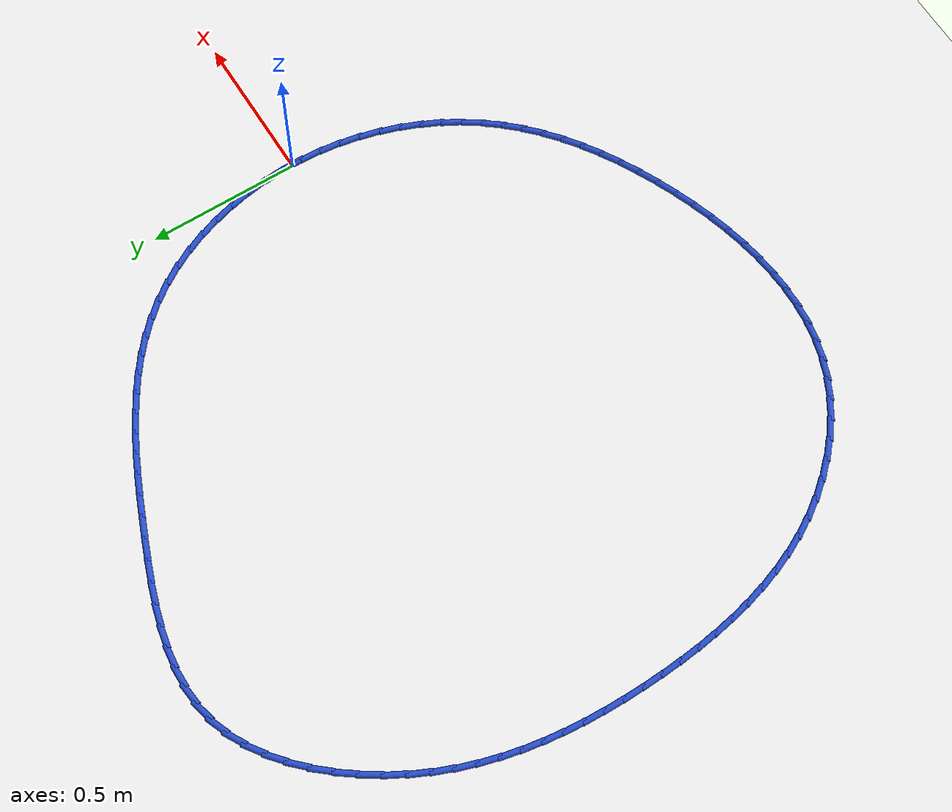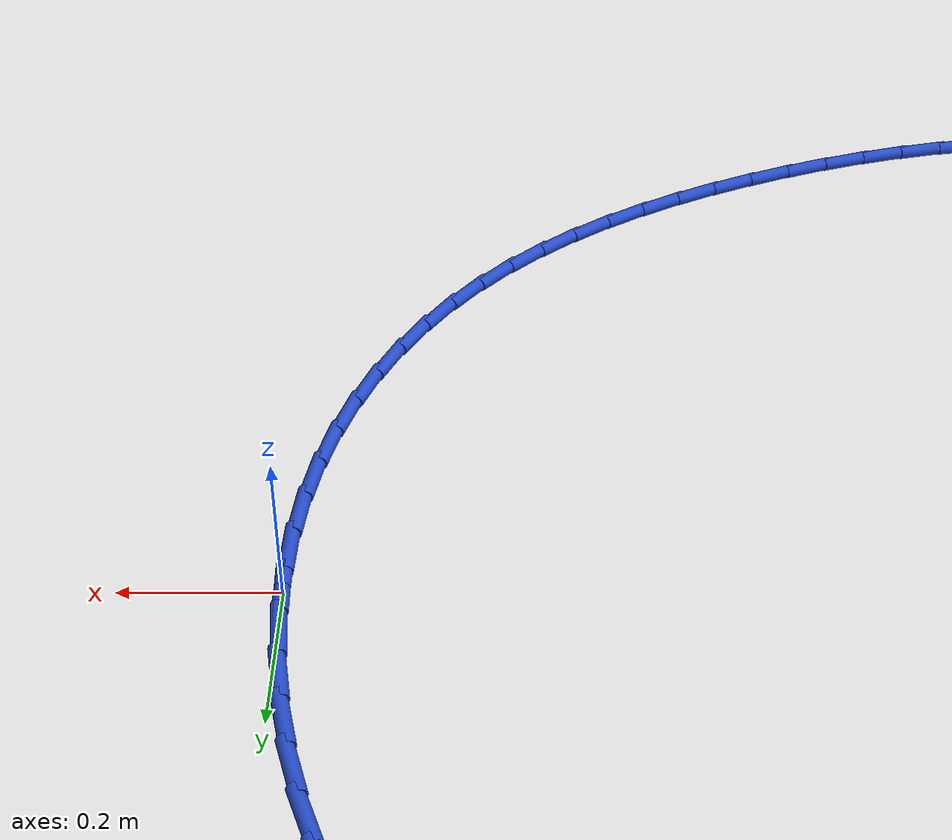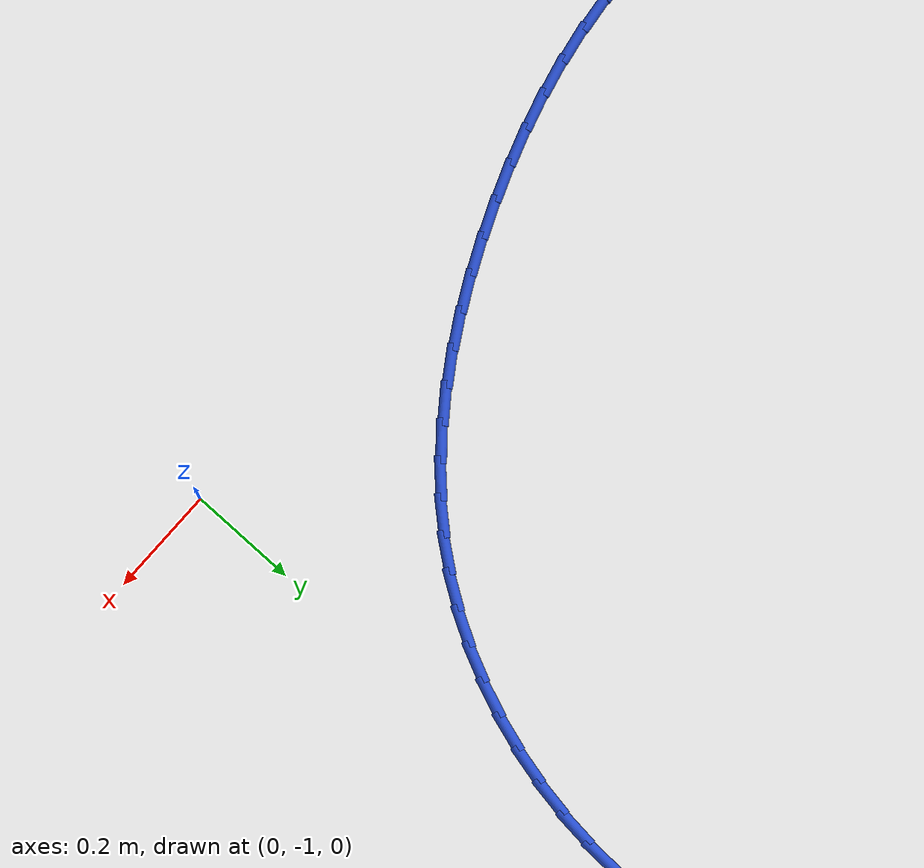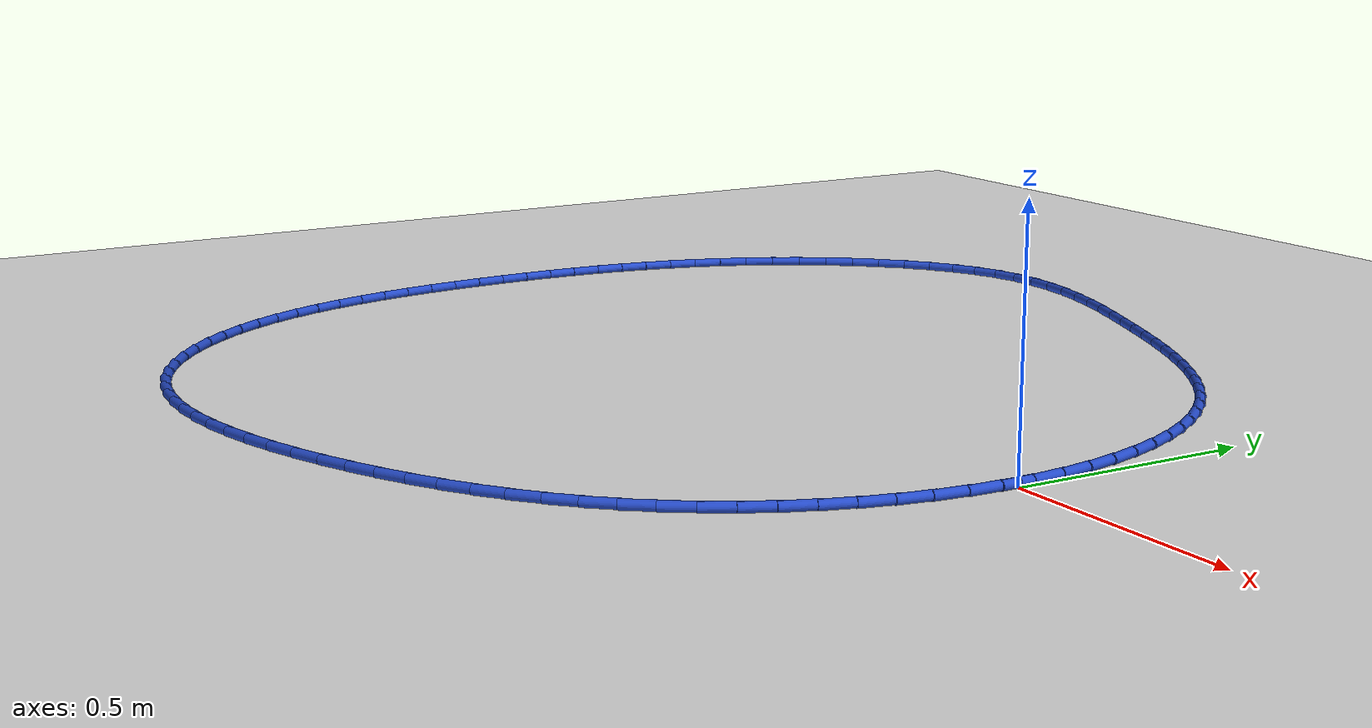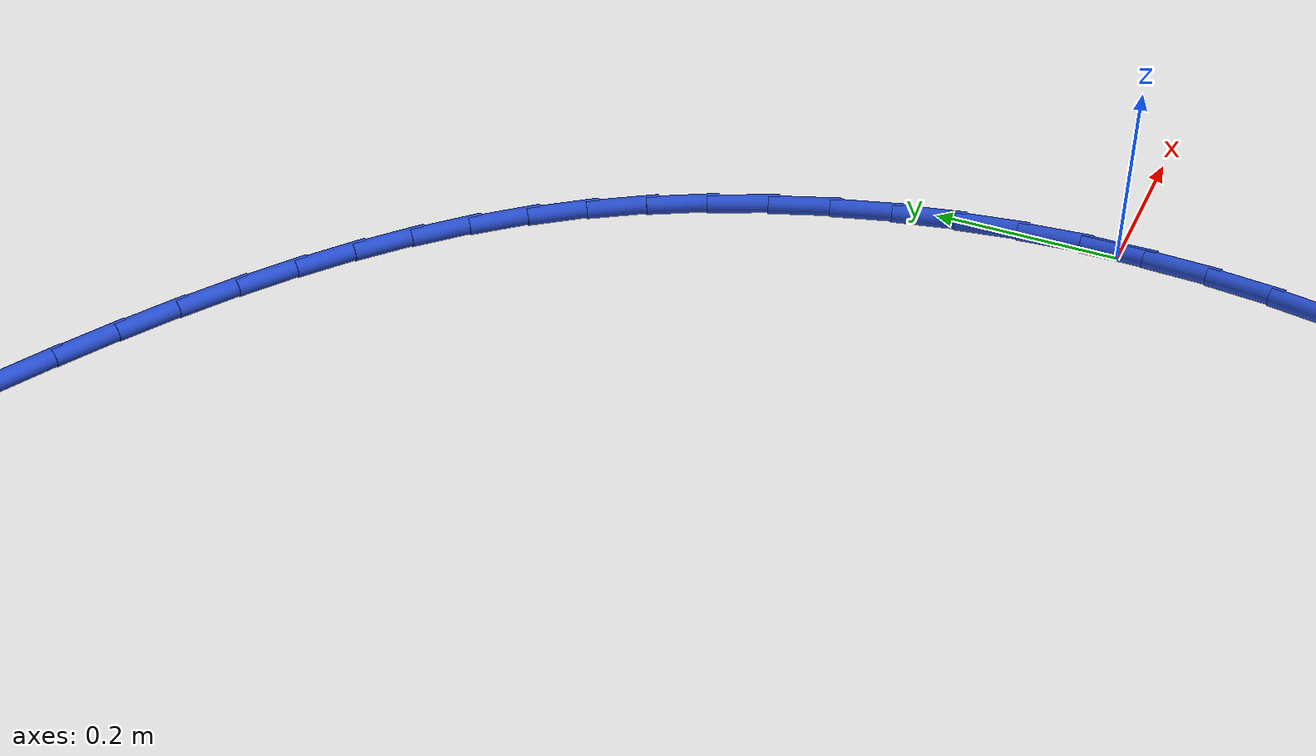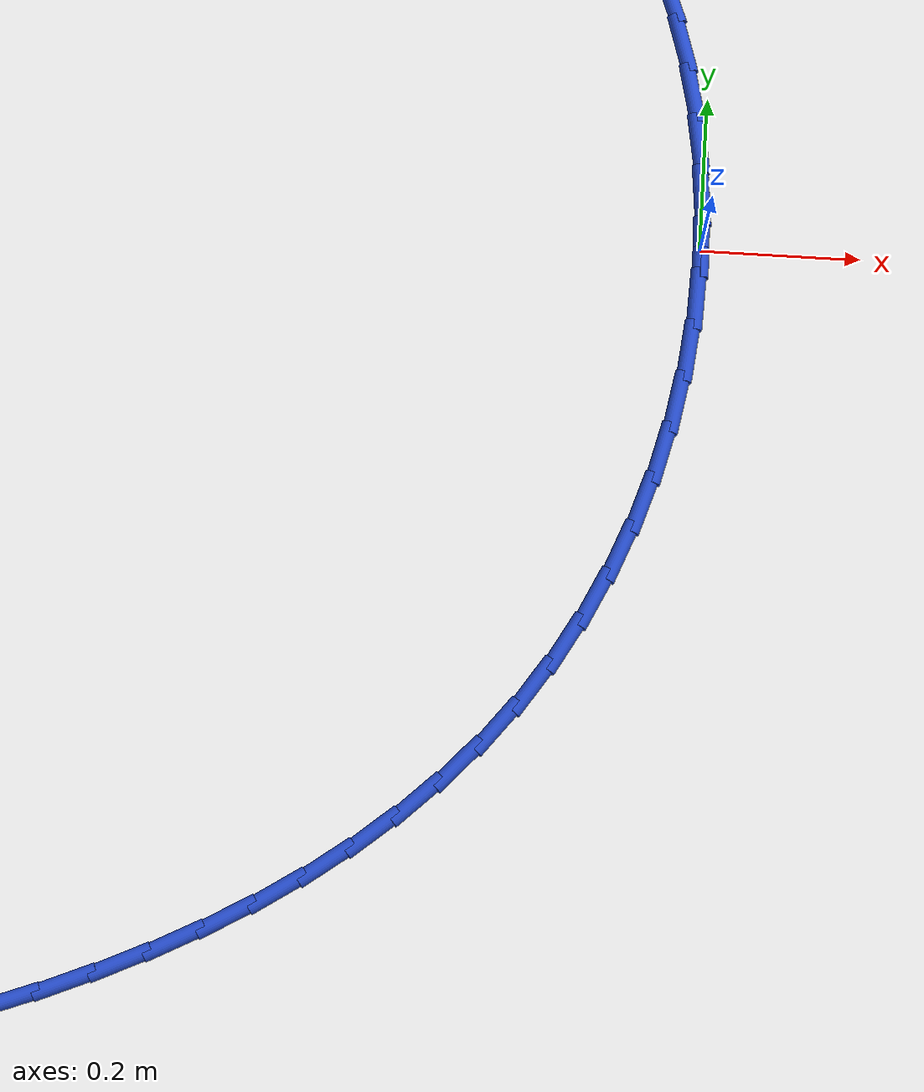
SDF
<sdf version="1.6">
 <world name="default">
  <light name="sun" type="directional">
   <pose>0 0 10 0 -0 0</pose>
   <diffuse>0.8 0.8 0.8 1</diffuse>
   <specular>0.2 0.2 0.2 1</specular>
   <attenuation>
    <range>1000</range>
    <constant>0.9</constant>
    <linear>0.01</linear>
    <quadratic>0.001</quadratic>
   </attenuation>
   <direction>-0.5 0.1 -0.9</direction>
  </light>
  <model name="ground_plane">
   <static>1</static>
   <link name="link">
    <collision name="collision">
     <geometry><plane><normal>0 0 1</normal><size>100 100</size></plane></geometry>
     <surface><friction><ode><mu>100</mu><mu2>50</mu2></ode></friction></surface>
    </collision>
    <visual name="visual">
     <cast_shadows>0</cast_shadows>
     <geometry><plane><normal>0 0 1</normal><size>100 100</size></plane></geometry>
     <material>
      <script><uri>file://media/materials/scripts/gazebo.material</uri><name>Gazebo/WhiteGlow</name></script>
     </material>
    </visual>
   </link>
  </model>
  <gravity>0 0 -9.8</gravity>
  <magnetic_field>6e-06 2.3e-05 -4.2e-05</magnetic_field>
  <atmosphere type="adiabatic"/>
  <physics name="default_physics" default="0" type="ode">
   <max_step_size>0.001</max_step_size>
   <real_time_factor>1</real_time_factor>
   <real_time_update_rate>1000</real_time_update_rate>
  </physics>
  <scene><ambient>0.4 0.4 0.4 1</ambient><background>0.7 0.7 0.7 1</background><shadows>1</shadows></scene>
  <spherical_coordinates>
   <surface_model>EARTH_WGS84</surface_model>
   <latitude_deg>0</latitude_deg>
   <longitude_deg>0</longitude_deg>
   <elevation>0</elevation>
   <heading_deg>0</heading_deg>
  </spherical_coordinates>
  <model name="line">
   <link name="link_0">
    <pose>4.5102810375396984e-17 -2.7755575615628914e-17 0.01 0 1.57 -1.5372121869875264</pose>
    <collision name="collision">
     <geometry><cylinder><radius>0.01</radius><length>0.08</length></cylinder></geometry>
    </collision>
    <visual name="visual">
     <material>
      <script><name>Gazebo/Blue</name><uri>file://media/materials/scripts/gazebo.material</uri></script>
     </material>
     <geometry><cylinder><radius>0.01</radius><length>0.08</length></cylinder></geometry>
    </visual>
   </link>
   <link name="link_1">
    <pose>-0.0022859759665158235 0.06804153592912765 0.01 0 1.57 -1.4706459351558636</pose>
    <collision name="collision">
     <geometry><cylinder><radius>0.01</radius><length>0.08</length></cylinder></geometry>
    </collision>
    <visual name="visual">
     <material>
      <script><name>Gazebo/Blue</name><uri>file://media/materials/scripts/gazebo.material</uri></script>
     </material>
     <geometry><cylinder><radius>0.01</radius><length>0.08</length></cylinder></geometry>
    </visual>
   </link>
   <link name="link_2">
    <pose>-0.00909491854480046 0.1358012564520265 0.01 0 1.57 -1.404736273116116</pose>
    <collision name="collision">
     <geometry><cylinder><radius>0.01</radius><length>0.08</length></cylinder></geometry>
    </collision>
    <visual name="visual">
     <material>
      <script><name>Gazebo/Blue</name><uri>file://media/materials/scripts/gazebo.material</uri></script>
     </material>
     <geometry><cylinder><radius>0.01</radius><length>0.08</length></cylinder></geometry>
    </visual>
   </link>
   <link name="link_3">
    <pose>-0.02033465383260243 0.202862715116517 0.01 0 1.57 -1.3388226017046176</pose>
    <collision name="collision">
     <geometry><cylinder><radius>0.01</radius><length>0.08</length></cylinder></geometry>
    </collision>
    <visual name="visual">
     <material>
      <script><name>Gazebo/Blue</name><uri>file://media/materials/scripts/gazebo.material</uri></script>
     </material>
     <geometry><cylinder><radius>0.01</radius><length>0.08</length></cylinder></geometry>
    </visual>
   </link>
   <link name="link_4">
    <pose>-0.03591300792767031 0.26880946547041973 0.01 0 1.57 -1.2722319381240197</pose>
    <collision name="collision">
     <geometry><cylinder><radius>0.01</radius><length>0.08</length></cylinder></geometry>
    </collision>
    <visual name="visual">
     <material>
      <script><name>Gazebo/Blue</name><uri>file://media/materials/scripts/gazebo.material</uri></script>
     </material>
     <geometry><cylinder><radius>0.01</radius><length>0.08</length></cylinder></geometry>
    </visual>
   </link>
   <link name="link_5">
    <pose>-0.05573780692775265 0.33322506106155514 0.01 0 1.57 -1.204279226201468</pose>
    <collision name="collision">
     <geometry><cylinder><radius>0.01</radius><length>0.08</length></cylinder></geometry>
    </collision>
    <visual name="visual">
     <material>
      <script><name>Gazebo/Blue</name><uri>file://media/materials/scripts/gazebo.material</uri></script>
     </material>
     <geometry><cylinder><radius>0.01</radius><length>0.08</length></cylinder></geometry>
    </visual>
   </link>
   <link name="link_6">
    <pose>-0.07971687693059805 0.39569305543774386 0.01 0 1.57 -1.1342694727394105</pose>
    <collision name="collision">
     <geometry><cylinder><radius>0.01</radius><length>0.08</length></cylinder></geometry>
    </collision>
    <visual name="visual">
     <material>
      <script><name>Gazebo/Blue</name><uri>file://media/materials/scripts/gazebo.material</uri></script>
     </material>
     <geometry><cylinder><radius>0.01</radius><length>0.08</length></cylinder></geometry>
    </visual>
   </link>
   <link name="link_7">
    <pose>-0.10775804403395507 0.45579700214680635 0.01 0 1.57 -1.0615045963562957</pose>
    <collision name="collision">
     <geometry><cylinder><radius>0.01</radius><length>0.08</length></cylinder></geometry>
    </collision>
    <visual name="visual">
     <material>
      <script><name>Gazebo/Blue</name><uri>file://media/materials/scripts/gazebo.material</uri></script>
     </material>
     <geometry><cylinder><radius>0.01</radius><length>0.08</length></cylinder></geometry>
    </visual>
   </link>
   <link name="link_8">
    <pose>-0.1397691343355722 0.5131204547365632 0.01 0 1.57 -0.9852984678331838</pose>
    <collision name="collision">
     <geometry><cylinder><radius>0.01</radius><length>0.08</length></cylinder></geometry>
    </collision>
    <visual name="visual">
     <material>
      <script><name>Gazebo/Blue</name><uri>file://media/materials/scripts/gazebo.material</uri></script>
     </material>
     <geometry><cylinder><radius>0.01</radius><length>0.08</length></cylinder></geometry>
    </visual>
   </link>
   <link name="link_9">
    <pose>-0.17565797393319812 0.5672469667548347 0.01 0 1.57 -0.9053281492900213</pose>
    <collision name="collision">
     <geometry><cylinder><radius>0.01</radius><length>0.08</length></cylinder></geometry>
    </collision>
    <visual name="visual">
     <material>
      <script><name>Gazebo/Blue</name><uri>file://media/materials/scripts/gazebo.material</uri></script>
     </material>
     <geometry><cylinder><radius>0.01</radius><length>0.08</length></cylinder></geometry>
    </visual>
   </link>
   <link name="link_10">
    <pose>-0.21532622108897898 0.6177859322760211 0.01 0 1.57 -0.826237822256473</pose>
    <collision name="collision">
     <geometry><cylinder><radius>0.01</radius><length>0.08</length></cylinder></geometry>
    </collision>
    <visual name="visual">
     <material>
      <script><name>Gazebo/Blue</name><uri>file://media/materials/scripts/gazebo.material</uri></script>
     </material>
     <geometry><cylinder><radius>0.01</radius><length>0.08</length></cylinder></geometry>
    </visual>
   </link>
   <link name="link_11">
    <pose>-0.2585841285177646 0.6647296945363851 0.01 0 1.57 -0.7526672981691844</pose>
    <collision name="collision">
     <geometry><cylinder><radius>0.01</radius><length>0.08</length></cylinder></geometry>
    </collision>
    <visual name="visual">
     <material>
      <script><name>Gazebo/Blue</name><uri>file://media/materials/scripts/gazebo.material</uri></script>
     </material>
     <geometry><cylinder><radius>0.01</radius><length>0.08</length></cylinder></geometry>
    </visual>
   </link>
   <link name="link_12">
    <pose>-0.3051720339320167 0.7083635099744834 0.01 0 1.57 -0.6855911593926873</pose>
    <collision name="collision">
     <geometry><cylinder><radius>0.01</radius><length>0.08</length></cylinder></geometry>
    </collision>
    <visual name="visual">
     <material>
      <script><name>Gazebo/Blue</name><uri>file://media/materials/scripts/gazebo.material</uri></script>
     </material>
     <geometry><cylinder><radius>0.01</radius><length>0.08</length></cylinder></geometry>
    </visual>
   </link>
   <link name="link_13">
    <pose>-0.35482850234161867 0.7489800618753479 0.01 0 1.57 -0.6255050384825276</pose>
    <collision name="collision">
     <geometry><cylinder><radius>0.01</radius><length>0.08</length></cylinder></geometry>
    </collision>
    <visual name="visual">
     <material>
      <script><name>Gazebo/Blue</name><uri>file://media/materials/scripts/gazebo.material</uri></script>
     </material>
     <geometry><cylinder><radius>0.01</radius><length>0.08</length></cylinder></geometry>
    </visual>
   </link>
   <link name="link_14">
    <pose>-0.40729209875645367 0.7868720335240103 0.01 0 1.57 -0.5725836713804383</pose>
    <collision name="collision">
     <geometry><cylinder><radius>0.01</radius><length>0.08</length></cylinder></geometry>
    </collision>
    <visual name="visual">
     <material>
      <script><name>Gazebo/Blue</name><uri>file://media/materials/scripts/gazebo.material</uri></script>
     </material>
     <geometry><cylinder><radius>0.01</radius><length>0.08</length></cylinder></geometry>
    </visual>
   </link>
   <link name="link_15">
    <pose>-0.4623013881864049 0.8223321082055023 0.01 0 1.57 -0.5267663026989902</pose>
    <collision name="collision">
     <geometry><cylinder><radius>0.01</radius><length>0.08</length></cylinder></geometry>
    </collision>
    <visual name="visual">
     <material>
      <script><name>Gazebo/Blue</name><uri>file://media/materials/scripts/gazebo.material</uri></script>
     </material>
     <geometry><cylinder><radius>0.01</radius><length>0.08</length></cylinder></geometry>
    </visual>
   </link>
   <link name="link_16">
    <pose>-0.5195949356413557 0.8556529692048558 0.01 0 1.57 -0.48784088631316697</pose>
    <collision name="collision">
     <geometry><cylinder><radius>0.01</radius><length>0.08</length></cylinder></geometry>
    </collision>
    <visual name="visual">
     <material>
      <script><name>Gazebo/Blue</name><uri>file://media/materials/scripts/gazebo.material</uri></script>
     </material>
     <geometry><cylinder><radius>0.01</radius><length>0.08</length></cylinder></geometry>
    </visual>
   </link>
   <link name="link_17">
    <pose>-0.5789113061311894 0.8871272998071023 0.01 0 1.57 -0.45551506814498116</pose>
    <collision name="collision">
     <geometry><cylinder><radius>0.01</radius><length>0.08</length></cylinder></geometry>
    </collision>
    <visual name="visual">
     <material>
      <script><name>Gazebo/Blue</name><uri>file://media/materials/scripts/gazebo.material</uri></script>
     </material>
     <geometry><cylinder><radius>0.01</radius><length>0.08</length></cylinder></geometry>
    </visual>
   </link>
   <link name="link_18">
    <pose>-0.6399890646657889 0.9170477832972733 0.01 0 1.57 -0.42946997244952395</pose>
    <collision name="collision">
     <geometry><cylinder><radius>0.01</radius><length>0.08</length></cylinder></geometry>
    </collision>
    <visual name="visual">
     <material>
      <script><name>Gazebo/Blue</name><uri>file://media/materials/scripts/gazebo.material</uri></script>
     </material>
     <geometry><cylinder><radius>0.01</radius><length>0.08</length></cylinder></geometry>
    </visual>
   </link>
   <link name="link_19">
    <pose>-0.7025667762550375 0.9457071029604014 0.01 0 1.57 -0.4093976965349323</pose>
    <collision name="collision">
     <geometry><cylinder><radius>0.01</radius><length>0.08</length></cylinder></geometry>
    </collision>
    <visual name="visual">
     <material>
      <script><name>Gazebo/Blue</name><uri>file://media/materials/scripts/gazebo.material</uri></script>
     </material>
     <geometry><cylinder><radius>0.01</radius><length>0.08</length></cylinder></geometry>
    </visual>
   </link>
   <link name="link_20">
    <pose>-0.7663830059088188 0.9733979420815174 0.01 0 1.57 -0.39502554870017015</pose>
    <collision name="collision">
     <geometry><cylinder><radius>0.01</radius><length>0.08</length></cylinder></geometry>
    </collision>
    <visual name="visual">
     <material>
      <script><name>Gazebo/Blue</name><uri>file://media/materials/scripts/gazebo.material</uri></script>
     </material>
     <geometry><cylinder><radius>0.01</radius><length>0.08</length></cylinder></geometry>
    </visual>
   </link>
   <link name="link_21">
    <pose>-0.8311763186370154 1.0004129839456537 0.01 0 1.57 -0.3854925084437747</pose>
    <collision name="collision">
     <geometry><cylinder><radius>0.01</radius><length>0.08</length></cylinder></geometry>
    </collision>
    <visual name="visual">
     <material>
      <script><name>Gazebo/Blue</name><uri>file://media/materials/scripts/gazebo.material</uri></script>
     </material>
     <geometry><cylinder><radius>0.01</radius><length>0.08</length></cylinder></geometry>
    </visual>
   </link>
   <link name="link_22">
    <pose>-0.8966857307480907 1.0269964098497522 0.01 0 1.57 -0.3717972548668192</pose>
    <collision name="collision">
     <geometry><cylinder><radius>0.01</radius><length>0.08</length></cylinder></geometry>
    </collision>
    <visual name="visual">
     <material>
      <script><name>Gazebo/Blue</name><uri>file://media/materials/scripts/gazebo.material</uri></script>
     </material>
     <geometry><cylinder><radius>0.01</radius><length>0.08</length></cylinder></geometry>
    </visual>
   </link>
   <link name="link_23">
    <pose>-0.9626565100148968 1.052720543333477 0.01 0 1.57 -0.3471690724472163</pose>
    <collision name="collision">
     <geometry><cylinder><radius>0.01</radius><length>0.08</length></cylinder></geometry>
    </collision>
    <visual name="visual">
     <material>
      <script><name>Gazebo/Blue</name><uri>file://media/materials/scripts/gazebo.material</uri></script>
     </material>
     <geometry><cylinder><radius>0.01</radius><length>0.08</length></cylinder></geometry>
    </visual>
   </link>
   <link name="link_24">
    <pose>-1.0288384924432676 1.0766667505265033 0.01 0 1.57 -0.31069890166958747</pose>
    <collision name="collision">
     <geometry><cylinder><radius>0.01</radius><length>0.08</length></cylinder></geometry>
    </collision>
    <visual name="visual">
     <material>
      <script><name>Gazebo/Blue</name><uri>file://media/materials/scripts/gazebo.material</uri></script>
     </material>
     <geometry><cylinder><radius>0.01</radius><length>0.08</length></cylinder></geometry>
    </visual>
   </link>
   <link name="link_25">
    <pose>-1.0949816182726329 1.0979051953592602 0.01 0 1.57 -0.26116546942196517</pose>
    <collision name="collision">
     <geometry><cylinder><radius>0.01</radius><length>0.08</length></cylinder></geometry>
    </collision>
    <visual name="visual">
     <material>
      <script><name>Gazebo/Blue</name><uri>file://media/materials/scripts/gazebo.material</uri></script>
     </material>
     <geometry><cylinder><radius>0.01</radius><length>0.08</length></cylinder></geometry>
    </visual>
   </link>
   <link name="link_26">
    <pose>-1.1608358277424222 1.1155060417621785 0.01 0 1.57 -0.19695925347924428</pose>
    <collision name="collision">
     <geometry><cylinder><radius>0.01</radius><length>0.08</length></cylinder></geometry>
    </collision>
    <visual name="visual">
     <material>
      <script><name>Gazebo/Blue</name><uri>file://media/materials/scripts/gazebo.material</uri></script>
     </material>
     <geometry><cylinder><radius>0.01</radius><length>0.08</length></cylinder></geometry>
    </visual>
   </link>
   <link name="link_27">
    <pose>-1.226151061092064 1.1285394536656874 0.01 0 1.57 -0.11626523993622517</pose>
    <collision name="collision">
     <geometry><cylinder><radius>0.01</radius><length>0.08</length></cylinder></geometry>
    </collision>
    <visual name="visual">
     <material>
      <script><name>Gazebo/Blue</name><uri>file://media/materials/scripts/gazebo.material</uri></script>
     </material>
     <geometry><cylinder><radius>0.01</radius><length>0.08</length></cylinder></geometry>
    </visual>
   </link>
   <link name="link_28">
    <pose>-1.290677258560989 1.1360755950002168 0.01 0 1.57 -0.017466885018607513</pose>
    <collision name="collision">
     <geometry><cylinder><radius>0.01</radius><length>0.08</length></cylinder></geometry>
    </collision>
    <visual name="visual">
     <material>
      <script><name>Gazebo/Blue</name><uri>file://media/materials/scripts/gazebo.material</uri></script>
     </material>
     <geometry><cylinder><radius>0.01</radius><length>0.08</length></cylinder></geometry>
    </visual>
   </link>
   <link name="link_29">
    <pose>-1.3541643603886255 1.1371846296961967 0.01 0 1.57 0.1001161555597363</pose>
    <collision name="collision">
     <geometry><cylinder><radius>0.01</radius><length>0.08</length></cylinder></geometry>
    </collision>
    <visual name="visual">
     <material>
      <script><name>Gazebo/Blue</name><uri>file://media/materials/scripts/gazebo.material</uri></script>
     </material>
     <geometry><cylinder><radius>0.01</radius><length>0.08</length></cylinder></geometry>
    </visual>
   </link>
   <link name="link_30">
    <pose>-1.416362306814404 1.130936721684057 0.01 0 1.57 0.23508045122359403</pose>
    <collision name="collision">
     <geometry><cylinder><radius>0.01</radius><length>0.08</length></cylinder></geometry>
    </collision>
    <visual name="visual">
     <material>
      <script><name>Gazebo/Blue</name><uri>file://media/materials/scripts/gazebo.material</uri></script>
     </material>
     <geometry><cylinder><radius>0.01</radius><length>0.08</length></cylinder></geometry>
    </visual>
   </link>
   <link name="link_31">
    <pose>-1.4770208001389997 1.1164084806588663 0.01 0 1.57 0.3744146274903598</pose>
    <collision name="collision">
     <geometry><cylinder><radius>0.01</radius><length>0.08</length></cylinder></geometry>
    </collision>
    <visual name="visual">
     <material>
      <script><name>Gazebo/Blue</name><uri>file://media/materials/scripts/gazebo.material</uri></script>
     </material>
     <geometry><cylinder><radius>0.01</radius><length>0.08</length></cylinder></geometry>
    </visual>
   </link>
   <link name="link_32">
    <pose>-1.53586708876844 1.0932847926819496 0.01 0 1.57 0.4993047331498298</pose>
    <collision name="collision">
     <geometry><cylinder><radius>0.01</radius><length>0.08</length></cylinder></geometry>
    </collision>
    <visual name="visual">
     <material>
      <script><name>Gazebo/Blue</name><uri>file://media/materials/scripts/gazebo.material</uri></script>
     </material>
     <geometry><cylinder><radius>0.01</radius><length>0.08</length></cylinder></geometry>
    </visual>
   </link>
   <link name="link_33">
    <pose>-1.592587862432755 1.0623492789979325 0.01 0 1.57 0.6089173370400939</pose>
    <collision name="collision">
     <geometry><cylinder><radius>0.01</radius><length>0.08</length></cylinder></geometry>
    </collision>
    <visual name="visual">
     <material>
      <script><name>Gazebo/Blue</name><uri>file://media/materials/scripts/gazebo.material</uri></script>
     </material>
     <geometry><cylinder><radius>0.01</radius><length>0.08</length></cylinder></geometry>
    </visual>
   </link>
   <link name="link_34">
    <pose>-1.646865550162038 1.0245009832811225 0.01 0 1.57 0.7053111594531772</pose>
    <collision name="collision">
     <geometry><cylinder><radius>0.01</radius><length>0.08</length></cylinder></geometry>
    </collision>
    <visual name="visual">
     <material>
      <script><name>Gazebo/Blue</name><uri>file://media/materials/scripts/gazebo.material</uri></script>
     </material>
     <geometry><cylinder><radius>0.01</radius><length>0.08</length></cylinder></geometry>
    </visual>
   </link>
   <link name="link_35">
    <pose>-1.6983825809863813 0.9806389492058256 0.01 0 1.57 0.790920078980469</pose>
    <collision name="collision">
     <geometry><cylinder><radius>0.01</radius><length>0.08</length></cylinder></geometry>
    </collision>
    <visual name="visual">
     <material>
      <script><name>Gazebo/Blue</name><uri>file://media/materials/scripts/gazebo.material</uri></script>
     </material>
     <geometry><cylinder><radius>0.01</radius><length>0.08</length></cylinder></geometry>
    </visual>
   </link>
   <link name="link_36">
    <pose>-1.746821383935877 0.9316622204463492 0.01 0 1.57 0.8681662819026967</pose>
    <collision name="collision">
     <geometry><cylinder><radius>0.01</radius><length>0.08</length></cylinder></geometry>
    </collision>
    <visual name="visual">
     <material>
      <script><name>Gazebo/Blue</name><uri>file://media/materials/scripts/gazebo.material</uri></script>
     </material>
     <geometry><cylinder><radius>0.01</radius><length>0.08</length></cylinder></geometry>
    </visual>
   </link>
   <link name="link_37">
    <pose>-1.7918643880406186 0.8784698406769995 0.01 0 1.57 0.939317854022438</pose>
    <collision name="collision">
     <geometry><cylinder><radius>0.01</radius><length>0.08</length></cylinder></geometry>
    </collision>
    <visual name="visual">
     <material>
      <script><name>Gazebo/Blue</name><uri>file://media/materials/scripts/gazebo.material</uri></script>
     </material>
     <geometry><cylinder><radius>0.01</radius><length>0.08</length></cylinder></geometry>
    </visual>
   </link>
   <link name="link_38">
    <pose>-1.8331940223306984 0.8219608535720831 0.01 0 1.57 1.0064868429725695</pose>
    <collision name="collision">
     <geometry><cylinder><radius>0.01</radius><length>0.08</length></cylinder></geometry>
    </collision>
    <visual name="visual">
     <material>
      <script><name>Gazebo/Blue</name><uri>file://media/materials/scripts/gazebo.material</uri></script>
     </material>
     <geometry><cylinder><radius>0.01</radius><length>0.08</length></cylinder></geometry>
    </visual>
   </link>
   <link name="link_39">
    <pose>-1.8704927158362097 0.7630343028059077 0.01 0 1.57 1.071687610827124</pose>
    <collision name="collision">
     <geometry><cylinder><radius>0.01</radius><length>0.08</length></cylinder></geometry>
    </collision>
    <visual name="visual">
     <material>
      <script><name>Gazebo/Blue</name><uri>file://media/materials/scripts/gazebo.material</uri></script>
     </material>
     <geometry><cylinder><radius>0.01</radius><length>0.08</length></cylinder></geometry>
    </visual>
   </link>
   <link name="link_40">
    <pose>-1.9034485432109427 0.7025810638800564 0.01 0 1.57 1.1359245534355815</pose>
    <collision name="collision">
     <geometry><cylinder><radius>0.01</radius><length>0.08</length></cylinder></geometry>
    </collision>
    <visual name="visual">
     <material>
      <script><name>Gazebo/Blue</name><uri>file://media/materials/scripts/gazebo.material</uri></script>
     </material>
     <geometry><cylinder><radius>0.01</radius><length>0.08</length></cylinder></geometry>
    </visual>
   </link>
   <link name="link_41">
    <pose>-1.9319835050730443 0.6411535647156416 0.01 0 1.57 1.1982294596267435</pose>
    <collision name="collision">
     <geometry><cylinder><radius>0.01</radius><length>0.08</length></cylinder></geometry>
    </collision>
    <visual name="visual">
     <material>
      <script><name>Gazebo/Blue</name><uri>file://media/materials/scripts/gazebo.material</uri></script>
     </material>
     <geometry><cylinder><radius>0.01</radius><length>0.08</length></cylinder></geometry>
    </visual>
   </link>
   <link name="link_42">
    <pose>-1.9563321158795843 0.5788520835421385 0.01 0 1.57 1.2578709918521833</pose>
    <collision name="collision">
     <geometry><cylinder><radius>0.01</radius><length>0.08</length></cylinder></geometry>
    </collision>
    <visual name="visual">
     <material>
      <script><name>Gazebo/Blue</name><uri>file://media/materials/scripts/gazebo.material</uri></script>
     </material>
     <geometry><cylinder><radius>0.01</radius><length>0.08</length></cylinder></geometry>
    </visual>
   </link>
   <link name="link_43">
    <pose>-1.97675066780156 0.5157453902671181 0.01 0 1.57 1.3142937134108266</pose>
    <collision name="collision">
     <geometry><cylinder><radius>0.01</radius><length>0.08</length></cylinder></geometry>
    </collision>
    <visual name="visual">
     <material>
      <script><name>Gazebo/Blue</name><uri>file://media/materials/scripts/gazebo.material</uri></script>
     </material>
     <geometry><cylinder><radius>0.01</radius><length>0.08</length></cylinder></geometry>
    </visual>
   </link>
   <link name="link_44">
    <pose>-1.993495453009969 0.4519022547981524 0.01 0 1.57 1.3670719928222201</pose>
    <collision name="collision">
     <geometry><cylinder><radius>0.01</radius><length>0.08</length></cylinder></geometry>
    </collision>
    <visual name="visual">
     <material>
      <script><name>Gazebo/Blue</name><uri>file://media/materials/scripts/gazebo.material</uri></script>
     </material>
     <geometry><cylinder><radius>0.01</radius><length>0.08</length></cylinder></geometry>
    </visual>
   </link>
   <link name="link_45">
    <pose>-2.0068227636758085 0.38739144704281275 0.01 0 1.57 1.4159084921231015</pose>
    <collision name="collision">
     <geometry><cylinder><radius>0.01</radius><length>0.08</length></cylinder></geometry>
    </collision>
    <visual name="visual">
     <material>
      <script><name>Gazebo/Blue</name><uri>file://media/materials/scripts/gazebo.material</uri></script>
     </material>
     <geometry><cylinder><radius>0.01</radius><length>0.08</length></cylinder></geometry>
    </visual>
   </link>
   <link name="link_46">
    <pose>-2.0169888919700742 0.3222817369086706 0.01 0 1.57 1.460621865103769</pose>
    <collision name="collision">
     <geometry><cylinder><radius>0.01</radius><length>0.08</length></cylinder></geometry>
    </collision>
    <visual name="visual">
     <material>
      <script><name>Gazebo/Blue</name><uri>file://media/materials/scripts/gazebo.material</uri></script>
     </material>
     <geometry><cylinder><radius>0.01</radius><length>0.08</length></cylinder></geometry>
    </visual>
   </link>
   <link name="link_47">
    <pose>-2.0242501300637645 0.25664189430329765 0.01 0 1.57 1.5011277808679497</pose>
    <collision name="collision">
     <geometry><cylinder><radius>0.01</radius><length>0.08</length></cylinder></geometry>
    </collision>
    <visual name="visual">
     <material>
      <script><name>Gazebo/Blue</name><uri>file://media/materials/scripts/gazebo.material</uri></script>
     </material>
     <geometry><cylinder><radius>0.01</radius><length>0.08</length></cylinder></geometry>
    </visual>
   </link>
   <link name="link_48">
    <pose>-2.028862770127876 0.19054068913426572 0.01 0 1.57 1.5374171304428588</pose>
    <collision name="collision">
     <geometry><cylinder><radius>0.01</radius><length>0.08</length></cylinder></geometry>
    </collision>
    <visual name="visual">
     <material>
      <script><name>Gazebo/Blue</name><uri>file://media/materials/scripts/gazebo.material</uri></script>
     </material>
     <geometry><cylinder><radius>0.01</radius><length>0.08</length></cylinder></geometry>
    </visual>
   </link>
   <link name="link_49">
    <pose>-2.031083104333405 0.12404689130914555 0.01 0 1.57 1.5695343771405943</pose>
    <collision name="collision">
     <geometry><cylinder><radius>0.01</radius><length>0.08</length></cylinder></geometry>
    </collision>
    <visual name="visual">
     <material>
      <script><name>Gazebo/Blue</name><uri>file://media/materials/scripts/gazebo.material</uri></script>
     </material>
     <geometry><cylinder><radius>0.01</radius><length>0.08</length></cylinder></geometry>
    </visual>
   </link>
   <link name="link_50">
    <pose>-2.03116742485135 0.057229270735508944 0.01 0 1.57 -1.5440096889888064</pose>
    <collision name="collision">
     <geometry><cylinder><radius>0.01</radius><length>0.08</length></cylinder></geometry>
    </collision>
    <visual name="visual">
     <material>
      <script><name>Gazebo/Blue</name><uri>file://media/materials/scripts/gazebo.material</uri></script>
     </material>
     <geometry><cylinder><radius>0.01</radius><length>0.08</length></cylinder></geometry>
    </visual>
   </link>
   <link name="link_51">
    <pose>-2.0293703572131725 -0.009842894781853741 0.01 0 1.57 -1.5174327748545768</pose>
    <collision name="collision">
     <geometry><cylinder><radius>0.01</radius><length>0.08</length></cylinder></geometry>
    </collision>
    <visual name="visual">
     <material>
      <script><name>Gazebo/Blue</name><uri>file://media/materials/scripts/gazebo.material</uri></script>
     </material>
     <geometry><cylinder><radius>0.01</radius><length>0.08</length></cylinder></geometry>
    </visual>
   </link>
   <link name="link_52">
    <pose>-2.025780552645269 -0.07704974788199502 0.01 0 1.57 -1.4875876111232818</pose>
    <collision name="collision">
     <geometry><cylinder><radius>0.01</radius><length>0.08</length></cylinder></geometry>
    </collision>
    <visual name="visual">
     <material>
      <script><name>Gazebo/Blue</name><uri>file://media/materials/scripts/gazebo.material</uri></script>
     </material>
     <geometry><cylinder><radius>0.01</radius><length>0.08</length></cylinder></geometry>
    </visual>
   </link>
   <link name="link_53">
    <pose>-2.020181923049329 -0.14417856393887418 0.01 0 1.57 -1.453774841944018</pose>
    <collision name="collision">
     <geometry><cylinder><radius>0.01</radius><length>0.08</length></cylinder></geometry>
    </collision>
    <visual name="visual">
     <material>
      <script><name>Gazebo/Blue</name><uri>file://media/materials/scripts/gazebo.material</uri></script>
     </material>
     <geometry><cylinder><radius>0.01</radius><length>0.08</length></cylinder></geometry>
    </visual>
   </link>
   <link name="link_54">
    <pose>-2.0123257060285855 -0.21100666105316657 0.01 0 1.57 -1.4157633965534726</pose>
    <collision name="collision">
     <geometry><cylinder><radius>0.01</radius><length>0.08</length></cylinder></geometry>
    </collision>
    <visual name="visual">
     <material>
      <script><name>Gazebo/Blue</name><uri>file://media/materials/scripts/gazebo.material</uri></script>
     </material>
     <geometry><cylinder><radius>0.01</radius><length>0.08</length></cylinder></geometry>
    </visual>
   </link>
   <link name="link_55">
    <pose>-2.0019631391862727 -0.27731135732554746 0.01 0 1.57 -1.373313407504713</pose>
    <collision name="collision">
     <geometry><cylinder><radius>0.01</radius><length>0.08</length></cylinder></geometry>
    </collision>
    <visual name="visual">
     <material>
      <script><name>Gazebo/Blue</name><uri>file://media/materials/scripts/gazebo.material</uri></script>
     </material>
     <geometry><cylinder><radius>0.01</radius><length>0.08</length></cylinder></geometry>
    </visual>
   </link>
   <link name="link_56">
    <pose>-1.9888454601256234 -0.3428699708566919 0.01 0 1.57 -1.3261952278776385</pose>
    <collision name="collision">
     <geometry><cylinder><radius>0.01</radius><length>0.08</length></cylinder></geometry>
    </collision>
    <visual name="visual">
     <material>
      <script><name>Gazebo/Blue</name><uri>file://media/materials/scripts/gazebo.material</uri></script>
     </material>
     <geometry><cylinder><radius>0.01</radius><length>0.08</length></cylinder></geometry>
    </visual>
   </link>
   <link name="link_57">
    <pose>-1.9727239064498714 -0.4074598197472753 0.01 0 1.57 -1.2742150777874857</pose>
    <collision name="collision">
     <geometry><cylinder><radius>0.01</radius><length>0.08</length></cylinder></geometry>
    </collision>
    <visual name="visual">
     <material>
      <script><name>Gazebo/Blue</name><uri>file://media/materials/scripts/gazebo.material</uri></script>
     </material>
     <geometry><cylinder><radius>0.01</radius><length>0.08</length></cylinder></geometry>
    </visual>
   </link>
   <link name="link_58">
    <pose>-1.9533497157622488 -0.470858222097972 0.01 0 1.57 -1.2172480996429318</pose>
    <collision name="collision">
     <geometry><cylinder><radius>0.01</radius><length>0.08</length></cylinder></geometry>
    </collision>
    <visual name="visual">
     <material>
      <script><name>Gazebo/Blue</name><uri>file://media/materials/scripts/gazebo.material</uri></script>
     </material>
     <geometry><cylinder><radius>0.01</radius><length>0.08</length></cylinder></geometry>
    </visual>
   </link>
   <link name="link_59">
    <pose>-1.9304741256659894 -0.5328424960094588 0.01 0 1.57 -1.1552782798662284</pose>
    <collision name="collision">
     <geometry><cylinder><radius>0.01</radius><length>0.08</length></cylinder></geometry>
    </collision>
    <visual name="visual">
     <material>
      <script><name>Gazebo/Blue</name><uri>file://media/materials/scripts/gazebo.material</uri></script>
     </material>
     <geometry><cylinder><radius>0.01</radius><length>0.08</length></cylinder></geometry>
    </visual>
   </link>
   <link name="link_60">
    <pose>-1.903848373764326 -0.5931899595824098 0.01 0 1.57 -1.0884424359644682</pose>
    <collision name="collision">
     <geometry><cylinder><radius>0.01</radius><length>0.08</length></cylinder></geometry>
    </collision>
    <visual name="visual">
     <material>
      <script><name>Gazebo/Blue</name><uri>file://media/materials/scripts/gazebo.material</uri></script>
     </material>
     <geometry><cylinder><radius>0.01</radius><length>0.08</length></cylinder></geometry>
    </visual>
   </link>
   <link name="link_61">
    <pose>-1.8732236976604923 -0.6516779309175007 0.01 0 1.57 -1.0170723635404704</pose>
    <collision name="collision">
     <geometry><cylinder><radius>0.01</radius><length>0.08</length></cylinder></geometry>
    </collision>
    <visual name="visual">
     <material>
      <script><name>Gazebo/Blue</name><uri>file://media/materials/scripts/gazebo.material</uri></script>
     </material>
     <geometry><cylinder><radius>0.01</radius><length>0.08</length></cylinder></geometry>
    </visual>
   </link>
   <link name="link_62">
    <pose>-1.8383513349577214 -0.7080837281154065 0.01 0 1.57 -0.9422157915753628</pose>
    <collision name="collision">
     <geometry><cylinder><radius>0.01</radius><length>0.08</length></cylinder></geometry>
    </collision>
    <visual name="visual">
     <material>
      <script><name>Gazebo/Blue</name><uri>file://media/materials/scripts/gazebo.material</uri></script>
     </material>
     <geometry><cylinder><radius>0.01</radius><length>0.08</length></cylinder></geometry>
    </visual>
   </link>
   <link name="link_63">
    <pose>-1.7990475719028702 -0.7621509216098659 0.01 0 1.57 -0.8669338316120728</pose>
    <collision name="collision">
     <geometry><cylinder><radius>0.01</radius><length>0.08</length></cylinder></geometry>
    </collision>
    <visual name="visual">
     <material>
      <script><name>Gazebo/Blue</name><uri>file://media/materials/scripts/gazebo.material</uri></script>
     </material>
     <geometry><cylinder><radius>0.01</radius><length>0.08</length></cylinder></geometry>
    </visual>
   </link>
   <link name="link_64">
    <pose>-1.7555281138779848 -0.8134158605431049 0.01 0 1.57 -0.7911961935458963</pose>
    <collision name="collision">
     <geometry><cylinder><radius>0.01</radius><length>0.08</length></cylinder></geometry>
    </collision>
    <visual name="visual">
     <material>
      <script><name>Gazebo/Blue</name><uri>file://media/materials/scripts/gazebo.material</uri></script>
     </material>
     <geometry><cylinder><radius>0.01</radius><length>0.08</length></cylinder></geometry>
    </visual>
   </link>
   <link name="link_65">
    <pose>-1.7081601752525253 -0.8613362901916861 0.01 0 1.57 -0.7136913720721302</pose>
    <collision name="collision">
     <geometry><cylinder><radius>0.01</radius><length>0.08</length></cylinder></geometry>
    </collision>
    <visual name="visual">
     <material>
      <script><name>Gazebo/Blue</name><uri>file://media/materials/scripts/gazebo.material</uri></script>
     </material>
     <geometry><cylinder><radius>0.01</radius><length>0.08</length></cylinder></geometry>
    </visual>
   </link>
   <link name="link_66">
    <pose>-1.6573112597670143 -0.9053698057045456 0.01 0 1.57 -0.6331316798396462</pose>
    <collision name="collision">
     <geometry><cylinder><radius>0.01</radius><length>0.08</length></cylinder></geometry>
    </collision>
    <visual name="visual">
     <material>
      <script><name>Gazebo/Blue</name><uri>file://media/materials/scripts/gazebo.material</uri></script>
     </material>
     <geometry><cylinder><radius>0.01</radius><length>0.08</length></cylinder></geometry>
    </visual>
   </link>
   <link name="link_67">
    <pose>-1.603348871161977 -0.9449740022306202 0.01 0 1.57 -0.5482587359718123</pose>
    <collision name="collision">
     <geometry><cylinder><radius>0.01</radius><length>0.08</length></cylinder></geometry>
    </collision>
    <visual name="visual">
     <material>
      <script><name>Gazebo/Blue</name><uri>file://media/materials/scripts/gazebo.material</uri></script>
     </material>
     <geometry><cylinder><radius>0.01</radius><length>0.08</length></cylinder></geometry>
    </visual>
   </link>
   <link name="link_68">
    <pose>-1.5466405131779386 -0.9796064749188472 0.01 0 1.57 -0.4578759022256698</pose>
    <collision name="collision">
     <geometry><cylinder><radius>0.01</radius><length>0.08</length></cylinder></geometry>
    </collision>
    <visual name="visual">
     <material>
      <script><name>Gazebo/Blue</name><uri>file://media/materials/scripts/gazebo.material</uri></script>
     </material>
     <geometry><cylinder><radius>0.01</radius><length>0.08</length></cylinder></geometry>
    </visual>
   </link>
   <link name="link_69">
    <pose>-1.487553689555422 -1.008724818918163 0.01 0 1.57 -0.3611148310774021</pose>
    <collision name="collision">
     <geometry><cylinder><radius>0.01</radius><length>0.08</length></cylinder></geometry>
    </collision>
    <visual name="visual">
     <material>
      <script><name>Gazebo/Blue</name><uri>file://media/materials/scripts/gazebo.material</uri></script>
     </material>
     <geometry><cylinder><radius>0.01</radius><length>0.08</length></cylinder></geometry>
    </visual>
   </link>
   <link name="link_70">
    <pose>-1.4264545051594026 -1.0318005246163973 0.01 0 1.57 -0.26307624816266173</pose>
    <collision name="collision">
     <geometry><cylinder><radius>0.01</radius><length>0.08</length></cylinder></geometry>
    </collision>
    <visual name="visual">
     <material>
      <script><name>Gazebo/Blue</name><uri>file://media/materials/scripts/gazebo.material</uri></script>
     </material>
     <geometry><cylinder><radius>0.01</radius><length>0.08</length></cylinder></geometry>
    </visual>
   </link>
   <link name="link_71">
    <pose>-1.36366830140944 -1.0487099917672884 0.01 0 1.57 -0.1708950435734061</pose>
    <collision name="collision">
     <geometry><cylinder><radius>0.01</radius><length>0.08</length></cylinder></geometry>
    </collision>
    <visual name="visual">
     <material>
      <script><name>Gazebo/Blue</name><uri>file://media/materials/scripts/gazebo.material</uri></script>
     </material>
     <geometry><cylinder><radius>0.01</radius><length>0.08</length></cylinder></geometry>
    </visual>
   </link>
   <link name="link_72">
    <pose>-1.2994742227108036 -1.0597885019382434 0.01 0 1.57 -0.08563090623550754</pose>
    <collision name="collision">
     <geometry><cylinder><radius>0.01</radius><length>0.08</length></cylinder></geometry>
    </collision>
    <visual name="visual">
     <material>
      <script><name>Gazebo/Blue</name><uri>file://media/materials/scripts/gazebo.material</uri></script>
     </material>
     <geometry><cylinder><radius>0.01</radius><length>0.08</length></cylinder></geometry>
    </visual>
   </link>
   <link name="link_73">
    <pose>-1.2341489225427853 -1.0653960794348833 0.01 0 1.57 -0.007504696179088377</pose>
    <collision name="collision">
     <geometry><cylinder><radius>0.01</radius><length>0.08</length></cylinder></geometry>
    </collision>
    <visual name="visual">
     <material>
      <script><name>Gazebo/Blue</name><uri>file://media/materials/scripts/gazebo.material</uri></script>
     </material>
     <geometry><cylinder><radius>0.01</radius><length>0.08</length></cylinder></geometry>
    </visual>
   </link>
   <link name="link_74">
    <pose>-1.1679690543846775 -1.0658927485628291 0.01 0 1.57 0.06364007221987811</pose>
    <collision name="collision">
     <geometry><cylinder><radius>0.01</radius><length>0.08</length></cylinder></geometry>
    </collision>
    <visual name="visual">
     <material>
      <script><name>Gazebo/Blue</name><uri>file://media/materials/scripts/gazebo.material</uri></script>
     </material>
     <geometry><cylinder><radius>0.01</radius><length>0.08</length></cylinder></geometry>
    </visual>
   </link>
   <link name="link_75">
    <pose>-1.101211271715771 -1.0616385336277023 0.01 0 1.57 0.1282102069009806</pose>
    <collision name="collision">
     <geometry><cylinder><radius>0.01</radius><length>0.08</length></cylinder></geometry>
    </collision>
    <visual name="visual">
     <material>
      <script><name>Gazebo/Blue</name><uri>file://media/materials/scripts/gazebo.material</uri></script>
     </material>
     <geometry><cylinder><radius>0.01</radius><length>0.08</length></cylinder></geometry>
    </visual>
   </link>
   <link name="link_76">
    <pose>-1.034152228015358 -1.0529934589351235 0.01 0 1.57 0.18675487382571263</pose>
    <collision name="collision">
     <geometry><cylinder><radius>0.01</radius><length>0.08</length></cylinder></geometry>
    </collision>
    <visual name="visual">
     <material>
      <script><name>Gazebo/Blue</name><uri>file://media/materials/scripts/gazebo.material</uri></script>
     </material>
     <geometry><cylinder><radius>0.01</radius><length>0.08</length></cylinder></geometry>
    </visual>
   </link>
   <link name="link_77">
    <pose>-0.9670685767627301 -1.0403175487907141 0.01 0 1.57 0.23988580287519018</pose>
    <collision name="collision">
     <geometry><cylinder><radius>0.01</radius><length>0.08</length></cylinder></geometry>
    </collision>
    <visual name="visual">
     <material>
      <script><name>Gazebo/Blue</name><uri>file://media/materials/scripts/gazebo.material</uri></script>
     </material>
     <geometry><cylinder><radius>0.01</radius><length>0.08</length></cylinder></geometry>
    </visual>
   </link>
   <link name="link_78">
    <pose>-0.9002369714371783 -1.0239708275000956 0.01 0 1.57 0.2882246293800108</pose>
    <collision name="collision">
     <geometry><cylinder><radius>0.01</radius><length>0.08</length></cylinder></geometry>
    </collision>
    <visual name="visual">
     <material>
      <script><name>Gazebo/Blue</name><uri>file://media/materials/scripts/gazebo.material</uri></script>
     </material>
     <geometry><cylinder><radius>0.01</radius><length>0.08</length></cylinder></geometry>
    </visual>
   </link>
   <link name="link_79">
    <pose>-0.833934065517995 -1.004313319368889 0.01 0 1.57 0.332372012963464</pose>
    <collision name="collision">
     <geometry><cylinder><radius>0.01</radius><length>0.08</length></cylinder></geometry>
    </collision>
    <visual name="visual">
     <material>
      <script><name>Gazebo/Blue</name><uri>file://media/materials/scripts/gazebo.material</uri></script>
     </material>
     <geometry><cylinder><radius>0.01</radius><length>0.08</length></cylinder></geometry>
    </visual>
   </link>
   <link name="link_80">
    <pose>-0.768436512484471 -0.981705048702715 0.01 0 1.57 0.37289247460366653</pose>
    <collision name="collision">
     <geometry><cylinder><radius>0.01</radius><length>0.08</length></cylinder></geometry>
    </collision>
    <visual name="visual">
     <material>
      <script><name>Gazebo/Blue</name><uri>file://media/materials/scripts/gazebo.material</uri></script>
     </material>
     <geometry><cylinder><radius>0.01</radius><length>0.08</length></cylinder></geometry>
    </visual>
   </link>
   <link name="link_81">
    <pose>-0.7040209658158985 -0.9565060398071952 0.01 0 1.57 0.41082660539086713</pose>
    <collision name="collision">
     <geometry><cylinder><radius>0.01</radius><length>0.08</length></cylinder></geometry>
    </collision>
    <visual name="visual">
     <material>
      <script><name>Gazebo/Blue</name><uri>file://media/materials/scripts/gazebo.material</uri></script>
     </material>
     <geometry><cylinder><radius>0.01</radius><length>0.08</length></cylinder></geometry>
    </visual>
   </link>
   <link name="link_82">
    <pose>-0.6409616340147815 -0.9290364923244497 0.01 0 1.57 0.4504808094377287</pose>
    <collision name="collision">
     <geometry><cylinder><radius>0.01</radius><length>0.08</length></cylinder></geometry>
    </collision>
    <visual name="visual">
     <material>
      <script><name>Gazebo/Blue</name><uri>file://media/materials/scripts/gazebo.material</uri></script>
     </material>
     <geometry><cylinder><radius>0.01</radius><length>0.08</length></cylinder></geometry>
    </visual>
   </link>
   <link name="link_83">
    <pose>-0.579514370619347 -0.8993176336201586 0.01 0 1.57 0.49390373145769156</pose>
    <collision name="collision">
     <geometry><cylinder><radius>0.01</radius><length>0.08</length></cylinder></geometry>
    </collision>
    <visual name="visual">
     <material>
      <script><name>Gazebo/Blue</name><uri>file://media/materials/scripts/gazebo.material</uri></script>
     </material>
     <geometry><cylinder><radius>0.01</radius><length>0.08</length></cylinder></geometry>
    </visual>
   </link>
   <link name="link_84">
    <pose>-0.5199266895353649 -0.8672348521194965 0.01 0 1.57 0.5413607306557954</pose>
    <collision name="collision">
     <geometry><cylinder><radius>0.01</radius><length>0.08</length></cylinder></geometry>
    </collision>
    <visual name="visual">
     <material>
      <script><name>Gazebo/Blue</name><uri>file://media/materials/scripts/gazebo.material</uri></script>
     </material>
     <geometry><cylinder><radius>0.01</radius><length>0.08</length></cylinder></geometry>
    </visual>
   </link>
   <link name="link_85">
    <pose>-0.4624460628501234 -0.8326728550931489 0.01 0 1.57 0.5930812397894084</pose>
    <collision name="collision">
     <geometry><cylinder><radius>0.01</radius><length>0.08</length></cylinder></geometry>
    </collision>
    <visual name="visual">
     <material>
      <script><name>Gazebo/Blue</name><uri>file://media/materials/scripts/gazebo.material</uri></script>
     </material>
     <geometry><cylinder><radius>0.01</radius><length>0.08</length></cylinder></geometry>
    </visual>
   </link>
   <link name="link_86">
    <pose>-0.4073199626509117 -0.7955163498118013 0.01 0 1.57 0.6492424682872049</pose>
    <collision name="collision">
     <geometry><cylinder><radius>0.01</radius><length>0.08</length></cylinder></geometry>
    </collision>
    <visual name="visual">
     <material>
      <script><name>Gazebo/Blue</name><uri>file://media/materials/scripts/gazebo.material</uri></script>
     </material>
     <geometry><cylinder><radius>0.01</radius><length>0.08</length></cylinder></geometry>
    </visual>
   </link>
   <link name="link_87">
    <pose>-0.3547958610250187 -0.7556500435461393 0.01 0 1.57 0.7099378334539838</pose>
    <collision name="collision">
     <geometry><cylinder><radius>0.01</radius><length>0.08</length></cylinder></geometry>
    </collision>
    <visual name="visual">
     <material>
      <script><name>Gazebo/Blue</name><uri>file://media/materials/scripts/gazebo.material</uri></script>
     </material>
     <geometry><cylinder><radius>0.01</radius><length>0.08</length></cylinder></geometry>
    </visual>
   </link>
   <link name="link_88">
    <pose>-0.3051212300597335 -0.7129586435668486 0.01 0 1.57 0.7751403387893561</pose>
    <collision name="collision">
     <geometry><cylinder><radius>0.01</radius><length>0.08</length></cylinder></geometry>
    </collision>
    <visual name="visual">
     <material>
      <script><name>Gazebo/Blue</name><uri>file://media/materials/scripts/gazebo.material</uri></script>
     </material>
     <geometry><cylinder><radius>0.01</radius><length>0.08</length></cylinder></geometry>
    </visual>
   </link>
   <link name="link_89">
    <pose>-0.25854354184234496 -0.6673268571446144 0.01 0 1.57 0.8446644925313157</pose>
    <collision name="collision">
     <geometry><cylinder><radius>0.01</radius><length>0.08</length></cylinder></geometry>
    </collision>
    <visual name="visual">
     <material>
      <script><name>Gazebo/Blue</name><uri>file://media/materials/scripts/gazebo.material</uri></script>
     </material>
     <geometry><cylinder><radius>0.01</radius><length>0.08</length></cylinder></geometry>
    </visual>
   </link>
   <link name="link_90">
    <pose>-0.215310268460142 -0.6186393915501227 0.01 0 1.57 0.9180699103316258</pose>
    <collision name="collision">
     <geometry><cylinder><radius>0.01</radius><length>0.08</length></cylinder></geometry>
    </collision>
    <visual name="visual">
     <material>
      <script><name>Gazebo/Blue</name><uri>file://media/materials/scripts/gazebo.material</uri></script>
     </material>
     <geometry><cylinder><radius>0.01</radius><length>0.08</length></cylinder></geometry>
    </visual>
   </link>
   <link name="link_91">
    <pose>-0.17566726440248429 -0.5667856228134379 0.01 0 1.57 0.9924353135732491</pose>
    <collision name="collision">
     <geometry><cylinder><radius>0.01</radius><length>0.08</length></cylinder></geometry>
    </collision>
    <visual name="visual">
     <material>
      <script><name>Gazebo/Blue</name><uri>file://media/materials/scripts/gazebo.material</uri></script>
     </material>
     <geometry><cylinder><radius>0.01</radius><length>0.08</length></cylinder></geometry>
    </visual>
   </link>
   <link name="link_92">
    <pose>-0.1397965864498188 -0.5118390618144735 0.01 0 1.57 1.0646223113189985</pose>
    <collision name="collision">
     <geometry><cylinder><radius>0.01</radius><length>0.08</length></cylinder></geometry>
    </collision>
    <visual name="visual">
     <material>
      <script><name>Gazebo/Blue</name><uri>file://media/materials/scripts/gazebo.material</uri></script>
     </material>
     <geometry><cylinder><radius>0.01</radius><length>0.08</length></cylinder></geometry>
    </visual>
   </link>
   <link name="link_93">
    <pose>-0.10779688346869425 -0.4541139538413807 0.01 0 1.57 1.1347848560533282</pose>
    <collision name="collision">
     <geometry><cylinder><radius>0.01</radius><length>0.08</length></cylinder></geometry>
    </collision>
    <visual name="visual">
     <material>
      <script><name>Gazebo/Blue</name><uri>file://media/materials/scripts/gazebo.material</uri></script>
     </material>
     <geometry><cylinder><radius>0.01</radius><length>0.08</length></cylinder></geometry>
    </visual>
   </link>
   <link name="link_94">
    <pose>-0.07976117615192048 -0.3939407883851815 0.01 0 1.57 1.2033328048508254</pose>
    <collision name="collision">
     <geometry><cylinder><radius>0.01</radius><length>0.08</length></cylinder></geometry>
    </collision>
    <visual name="visual">
     <material>
      <script><name>Gazebo/Blue</name><uri>file://media/materials/scripts/gazebo.material</uri></script>
     </material>
     <geometry><cylinder><radius>0.01</radius><length>0.08</length></cylinder></geometry>
    </visual>
   </link>
   <link name="link_95">
    <pose>-0.05578248519230739 -0.33165005493689814 0.01 0 1.57 1.2706957182812098</pose>
    <collision name="collision">
     <geometry><cylinder><radius>0.01</radius><length>0.08</length></cylinder></geometry>
    </collision>
    <visual name="visual">
     <material>
      <script><name>Gazebo/Blue</name><uri>file://media/materials/scripts/gazebo.material</uri></script>
     </material>
     <geometry><cylinder><radius>0.01</radius><length>0.08</length></cylinder></geometry>
    </visual>
   </link>
   <link name="link_96">
    <pose>-0.035953831282665175 -0.2675722429875538 0.01 0 1.57 1.3373106745037078</pose>
    <collision name="collision">
     <geometry><cylinder><radius>0.01</radius><length>0.08</length></cylinder></geometry>
    </collision>
    <visual name="visual">
     <material>
      <script><name>Gazebo/Blue</name><uri>file://media/materials/scripts/gazebo.material</uri></script>
     </material>
     <geometry><cylinder><radius>0.01</radius><length>0.08</length></cylinder></geometry>
    </visual>
   </link>
   <link name="link_97">
    <pose>-0.02036823511580325 -0.202037842028169 0.01 0 1.57 1.403613166690561</pose>
    <collision name="collision">
     <geometry><cylinder><radius>0.01</radius><length>0.08</length></cylinder></geometry>
    </collision>
    <visual name="visual">
     <material>
      <script><name>Gazebo/Blue</name><uri>file://media/materials/scripts/gazebo.material</uri></script>
     </material>
     <geometry><cylinder><radius>0.01</radius><length>0.08</length></cylinder></geometry>
    </visual>
   </link>
   <link name="link_98">
    <pose>-0.009118717384531795 -0.135377341549767 0.01 0 1.57 1.470029794194327</pose>
    <collision name="collision">
     <geometry><cylinder><radius>0.01</radius><length>0.08</length></cylinder></geometry>
    </collision>
    <visual name="visual">
     <material>
      <script><name>Gazebo/Blue</name><uri>file://media/materials/scripts/gazebo.material</uri></script>
     </material>
     <geometry><cylinder><radius>0.01</radius><length>0.08</length></cylinder></geometry>
    </visual>
   </link>
   <link name="link_99">
    <pose>-0.002298298781660723 -0.06792123104336989 0.01 0 1.57 1.5369715245681224</pose>
    <collision name="collision">
     <geometry><cylinder><radius>0.01</radius><length>0.08</length></cylinder></geometry>
    </collision>
    <visual name="visual">
     <material>
      <script><name>Gazebo/Blue</name><uri>file://media/materials/scripts/gazebo.material</uri></script>
     </material>
     <geometry><cylinder><radius>0.01</radius><length>0.08</length></cylinder></geometry>
    </visual>
   </link>
   <link name="link_100">
    <pose>4.5102810375396984e-17 1.3877787807814457e-16 0.01 0 1.57 -1.5707963267948966</pose>
    <collision name="collision">
     <geometry><cylinder><radius>0.01</radius><length>0.08</length></cylinder></geometry>
    </collision>
    <visual name="visual">
     <material>
      <script><name>Gazebo/Blue</name><uri>file://media/materials/scripts/gazebo.material</uri></script>
     </material>
     <geometry><cylinder><radius>0.01</radius><length>0.08</length></cylinder></geometry>
    </visual>
   </link>
  </model>
 </world>
</sdf>
